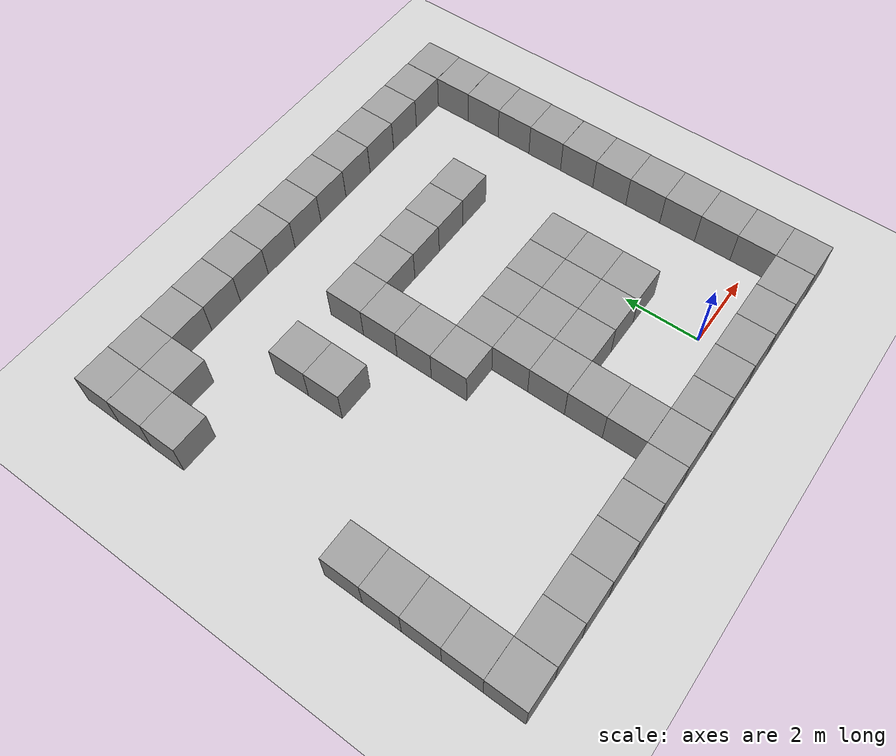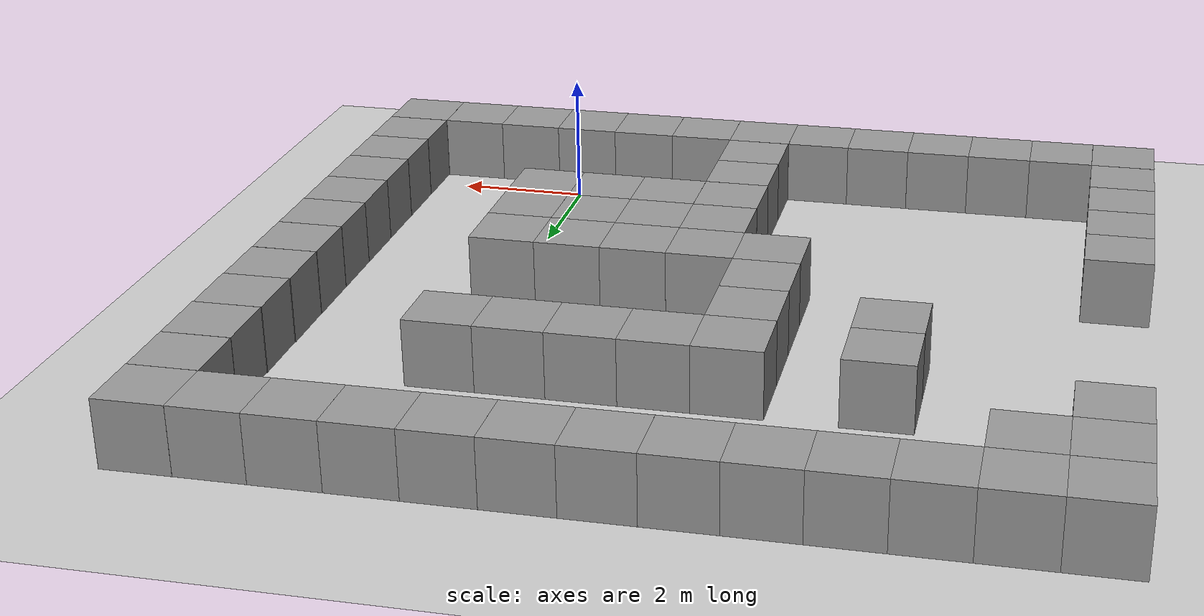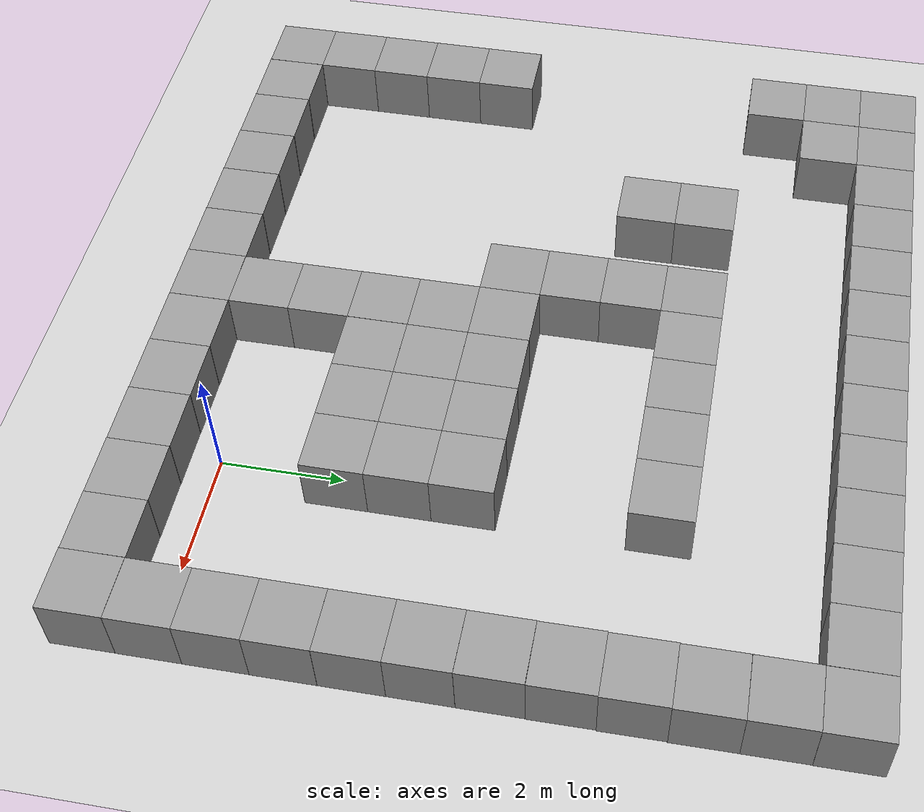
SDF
<sdf version="1.6">
 <world name="default">
  <light name="sun" type="directional">
   <pose>0 0 10 0 -0 0</pose>
   <diffuse>0.8 0.8 0.8 1</diffuse>
   <specular>0.2 0.2 0.2 1</specular>
   <attenuation>
    <range>1000</range>
    <constant>0.9</constant>
    <linear>0.01</linear>
    <quadratic>0.001</quadratic>
   </attenuation>
   <direction>-0.5 0.1 -0.9</direction>
  </light>
  <model name="ground_plane">
   <static>1</static>
   <link name="link">
    <collision name="collision">
     <geometry><plane><normal>0 0 1</normal><size>100 100</size></plane></geometry>
     <surface>
      <contact><collide_bitmask>65535</collide_bitmask></contact>
      <friction><ode><mu>100</mu><mu2>50</mu2></ode></friction>
     </surface>
    </collision>
    <visual name="visual">
     <cast_shadows>0</cast_shadows>
     <geometry><plane><normal>0 0 1</normal><size>100 100</size></plane></geometry>
     <material>
      <script><uri>file://media/materials/scripts/gazebo.material</uri><name>Gazebo/Grey</name></script>
     </material>
    </visual>
   </link>
  </model>
  <gravity>0 0 -9.8</gravity>
  <magnetic_field>6e-06 2.3e-05 -4.2e-05</magnetic_field>
  <atmosphere type="adiabatic"/>
  <physics name="default_physics" default="0" type="ode">
   <max_step_size>0.001</max_step_size>
   <real_time_factor>1</real_time_factor>
   <real_time_update_rate>1000</real_time_update_rate>
  </physics>
  <scene><ambient>0.4 0.4 0.4 1</ambient><background>0.7 0.7 0.7 1</background><shadows>1</shadows></scene>
  <audio><device>default</device></audio>
  <spherical_coordinates>
   <surface_model>EARTH_WGS84</surface_model>
   <latitude_deg>0</latitude_deg>
   <longitude_deg>0</longitude_deg>
   <elevation>0</elevation>
   <heading_deg>0</heading_deg>
  </spherical_coordinates>
  <model name="unit_box">
   <pose>1.0006 -1.00045 0.5 0 -0 0.004021</pose>
   <link name="link">
    <inertial>
     <mass>1</mass>
     <inertia>
      <ixx>0.166667</ixx>
      <ixy>0</ixy>
      <ixz>0</ixz>
      <iyy>0.166667</iyy>
      <iyz>0</iyz>
      <izz>0.166667</izz>
     </inertia>
    </inertial>
    <collision name="collision"><geometry><box><size>1 1 1</size></box></geometry></collision>
    <visual name="visual">
     <geometry><box><size>1 1 1</size></box></geometry>
     <material>
      <script><name>Gazebo/Grey</name><uri>file://media/materials/scripts/gazebo.material</uri></script>
     </material>
    </visual>
   </link>
  </model>
  <model name="unit_box_0">
   <pose>2.00063 -1.00087 0.499995 -0 -1e-05 0.004056</pose>
   <link name="link">
    <inertial>
     <mass>1</mass>
     <inertia>
      <ixx>0.166667</ixx>
      <ixy>0</ixy>
      <ixz>0</ixz>
      <iyy>0.166667</iyy>
      <iyz>0</iyz>
      <izz>0.166667</izz>
     </inertia>
    </inertial>
    <collision name="collision"><geometry><box><size>1 1 1</size></box></geometry></collision>
    <visual name="visual">
     <geometry><box><size>1 1 1</size></box></geometry>
     <material>
      <script><name>Gazebo/Grey</name><uri>file://media/materials/scripts/gazebo.material</uri></script>
     </material>
    </visual>
   </link>
  </model>
  <model name="unit_box_1">
   <pose>3.00114 -1.00315 0.499995 0 1e-05 0.003325</pose>
   <link name="link">
    <inertial>
     <mass>1</mass>
     <inertia>
      <ixx>0.166667</ixx>
      <ixy>0</ixy>
      <ixz>0</ixz>
      <iyy>0.166667</iyy>
      <iyz>0</iyz>
      <izz>0.166667</izz>
     </inertia>
    </inertial>
    <collision name="collision"><geometry><box><size>1 1 1</size></box></geometry></collision>
    <visual name="visual">
     <geometry><box><size>1 1 1</size></box></geometry>
     <material>
      <script><name>Gazebo/Grey</name><uri>file://media/materials/scripts/gazebo.material</uri></script>
     </material>
    </visual>
   </link>
  </model>
  <model name="unit_box_3">
   <pose>-9.00142 -1.00088 0.499995 1e-05 -0 0.002682</pose>
   <link name="link">
    <inertial>
     <mass>1</mass>
     <inertia>
      <ixx>0.166667</ixx>
      <ixy>0</ixy>
      <ixz>0</ixz>
      <iyy>0.166667</iyy>
      <iyz>0</iyz>
      <izz>0.166667</izz>
     </inertia>
    </inertial>
    <collision name="collision"><geometry><box><size>1 1 1</size></box></geometry></collision>
    <visual name="visual">
     <geometry><box><size>1 1 1</size></box></geometry>
     <material>
      <script><name>Gazebo/Grey</name><uri>file://media/materials/scripts/gazebo.material</uri></script>
     </material>
    </visual>
   </link>
  </model>
  <model name="unit_box_2">
   <pose>-8.00042 -0.999688 0.499995 0 1e-05 0.004667</pose>
   <link name="link">
    <inertial>
     <mass>1</mass>
     <inertia>
      <ixx>0.166667</ixx>
      <ixy>0</ixy>
      <ixz>0</ixz>
      <iyy>0.166667</iyy>
      <iyz>0</iyz>
      <izz>0.166667</izz>
     </inertia>
    </inertial>
    <collision name="collision"><geometry><box><size>1 1 1</size></box></geometry></collision>
    <visual name="visual">
     <geometry><box><size>1 1 1</size></box></geometry>
     <material>
      <script><name>Gazebo/Grey</name><uri>file://media/materials/scripts/gazebo.material</uri></script>
     </material>
    </visual>
   </link>
  </model>
  <model name="unit_box_4">
   <pose>-7.00039 -0.999876 0.499995 -0 1e-05 0.004653</pose>
   <link name="link">
    <inertial>
     <mass>1</mass>
     <inertia>
      <ixx>0.166667</ixx>
      <ixy>0</ixy>
      <ixz>0</ixz>
      <iyy>0.166667</iyy>
      <iyz>0</iyz>
      <izz>0.166667</izz>
     </inertia>
    </inertial>
    <collision name="collision"><geometry><box><size>1 1 1</size></box></geometry></collision>
    <visual name="visual">
     <geometry><box><size>1 1 1</size></box></geometry>
     <material>
      <script><name>Gazebo/Grey</name><uri>file://media/materials/scripts/gazebo.material</uri></script>
     </material>
    </visual>
   </link>
  </model>
  <model name="unit_box_5">
   <pose>-6.00038 -1.00053 0.5 0 -0 0.004649</pose>
   <link name="link">
    <inertial>
     <mass>1</mass>
     <inertia>
      <ixx>0.166667</ixx>
      <ixy>0</ixy>
      <ixz>0</ixz>
      <iyy>0.166667</iyy>
      <iyz>0</iyz>
      <izz>0.166667</izz>
     </inertia>
    </inertial>
    <collision name="collision"><geometry><box><size>1 1 1</size></box></geometry></collision>
    <visual name="visual">
     <geometry><box><size>1 1 1</size></box></geometry>
     <material>
      <script><name>Gazebo/Grey</name><uri>file://media/materials/scripts/gazebo.material</uri></script>
     </material>
    </visual>
   </link>
  </model>
  <model name="unit_box_6">
   <pose>-5.00003 -1.0008 0.5 0 -0 0.003989</pose>
   <link name="link">
    <inertial>
     <mass>1</mass>
     <inertia>
      <ixx>0.166667</ixx>
      <ixy>0</ixy>
      <ixz>0</ixz>
      <iyy>0.166667</iyy>
      <iyz>0</iyz>
      <izz>0.166667</izz>
     </inertia>
    </inertial>
    <collision name="collision"><geometry><box><size>1 1 1</size></box></geometry></collision>
    <visual name="visual">
     <geometry><box><size>1 1 1</size></box></geometry>
     <material>
      <script><name>Gazebo/Grey</name><uri>file://media/materials/scripts/gazebo.material</uri></script>
     </material>
    </visual>
   </link>
  </model>
  <model name="unit_box_7">
   <pose>-3.99987 -1.00157 0.499995 -1e-05 -0 0.003714</pose>
   <link name="link">
    <inertial>
     <mass>1</mass>
     <inertia>
      <ixx>0.166667</ixx>
      <ixy>0</ixy>
      <ixz>0</ixz>
      <iyy>0.166667</iyy>
      <iyz>0</iyz>
      <izz>0.166667</izz>
     </inertia>
    </inertial>
    <collision name="collision"><geometry><box><size>1 1 1</size></box></geometry></collision>
    <visual name="visual">
     <geometry><box><size>1 1 1</size></box></geometry>
     <material>
      <script><name>Gazebo/Grey</name><uri>file://media/materials/scripts/gazebo.material</uri></script>
     </material>
    </visual>
   </link>
  </model>
  <model name="unit_box_8">
   <pose>-2.99972 -1.00166 0.499995 1e-05 -0 0.003476</pose>
   <link name="link">
    <inertial>
     <mass>1</mass>
     <inertia>
      <ixx>0.166667</ixx>
      <ixy>0</ixy>
      <ixz>0</ixz>
      <iyy>0.166667</iyy>
      <iyz>0</iyz>
      <izz>0.166667</izz>
     </inertia>
    </inertial>
    <collision name="collision"><geometry><box><size>1 1 1</size></box></geometry></collision>
    <visual name="visual">
     <geometry><box><size>1 1 1</size></box></geometry>
     <material>
      <script><name>Gazebo/Grey</name><uri>file://media/materials/scripts/gazebo.material</uri></script>
     </material>
    </visual>
   </link>
  </model>
  <model name="unit_box_9">
   <pose>-1.99945 -0.999957 0.499995 0 -1e-05 0.004002</pose>
   <link name="link">
    <inertial>
     <mass>1</mass>
     <inertia>
      <ixx>0.166667</ixx>
      <ixy>0</ixy>
      <ixz>0</ixz>
      <iyy>0.166667</iyy>
      <iyz>0</iyz>
      <izz>0.166667</izz>
     </inertia>
    </inertial>
    <collision name="collision"><geometry><box><size>1 1 1</size></box></geometry></collision>
    <visual name="visual">
     <geometry><box><size>1 1 1</size></box></geometry>
     <material>
      <script><name>Gazebo/Grey</name><uri>file://media/materials/scripts/gazebo.material</uri></script>
     </material>
    </visual>
   </link>
  </model>
  <model name="unit_box_10">
   <pose>-0.99943 -1.00001 0.499995 0 -1e-05 0.004022</pose>
   <link name="link">
    <inertial>
     <mass>1</mass>
     <inertia>
      <ixx>0.166667</ixx>
      <ixy>0</ixy>
      <ixz>0</ixz>
      <iyy>0.166667</iyy>
      <iyz>0</iyz>
      <izz>0.166667</izz>
     </inertia>
    </inertial>
    <collision name="collision"><geometry><box><size>1 1 1</size></box></geometry></collision>
    <visual name="visual">
     <geometry><box><size>1 1 1</size></box></geometry>
     <material>
      <script><name>Gazebo/Grey</name><uri>file://media/materials/scripts/gazebo.material</uri></script>
     </material>
    </visual>
   </link>
  </model>
  <model name="unit_box_11">
   <pose>0.000589 -1.0004 0.499995 1e-05 -0 0.004021</pose>
   <link name="link">
    <inertial>
     <mass>1</mass>
     <inertia>
      <ixx>0.166667</ixx>
      <ixy>0</ixy>
      <ixz>0</ixz>
      <iyy>0.166667</iyy>
      <iyz>0</iyz>
      <izz>0.166667</izz>
     </inertia>
    </inertial>
    <collision name="collision"><geometry><box><size>1 1 1</size></box></geometry></collision>
    <visual name="visual">
     <geometry><box><size>1 1 1</size></box></geometry>
     <material>
      <script><name>Gazebo/Grey</name><uri>file://media/materials/scripts/gazebo.material</uri></script>
     </material>
    </visual>
   </link>
  </model>
  <model name="unit_box_12">
   <pose>-9.00074 0.000344 0.499995 1e-05 0 0.000253</pose>
   <link name="link">
    <inertial>
     <mass>1</mass>
     <inertia>
      <ixx>0.166667</ixx>
      <ixy>0</ixy>
      <ixz>0</ixz>
      <iyy>0.166667</iyy>
      <iyz>0</iyz>
      <izz>0.166667</izz>
     </inertia>
    </inertial>
    <collision name="collision"><geometry><box><size>1 1 1</size></box></geometry></collision>
    <visual name="visual">
     <geometry><box><size>1 1 1</size></box></geometry>
     <material>
      <script><name>Gazebo/Grey</name><uri>file://media/materials/scripts/gazebo.material</uri></script>
     </material>
    </visual>
   </link>
  </model>
  <model name="unit_box_15">
   <pose>-3.00118 2.00026 0.499995 -1e-05 -0 -0.000286</pose>
   <link name="link">
    <inertial>
     <mass>1</mass>
     <inertia>
      <ixx>0.166667</ixx>
      <ixy>0</ixy>
      <ixz>0</ixz>
      <iyy>0.166667</iyy>
      <iyz>0</iyz>
      <izz>0.166667</izz>
     </inertia>
    </inertial>
    <collision name="collision"><geometry><box><size>1 1 1</size></box></geometry></collision>
    <visual name="visual">
     <geometry><box><size>1 1 1</size></box></geometry>
     <material>
      <script><name>Gazebo/Grey</name><uri>file://media/materials/scripts/gazebo.material</uri></script>
     </material>
    </visual>
   </link>
  </model>
  <model name="unit_box_24">
   <pose>-9.00042 1.00036 0.499995 -0 -1e-05 0.000247</pose>
   <link name="link">
    <inertial>
     <mass>1</mass>
     <inertia>
      <ixx>0.166667</ixx>
      <ixy>0</ixy>
      <ixz>0</ixz>
      <iyy>0.166667</iyy>
      <iyz>0</iyz>
      <izz>0.166667</izz>
     </inertia>
    </inertial>
    <collision name="collision"><geometry><box><size>1 1 1</size></box></geometry></collision>
    <visual name="visual">
     <geometry><box><size>1 1 1</size></box></geometry>
     <material>
      <script><name>Gazebo/Grey</name><uri>file://media/materials/scripts/gazebo.material</uri></script>
     </material>
    </visual>
   </link>
  </model>
  <model name="unit_box_25">
   <pose>-9.00009 2.00037 0.499995 0 -1e-05 0.000248</pose>
   <link name="link">
    <inertial>
     <mass>1</mass>
     <inertia>
      <ixx>0.166667</ixx>
      <ixy>0</ixy>
      <ixz>0</ixz>
      <iyy>0.166667</iyy>
      <iyz>0</iyz>
      <izz>0.166667</izz>
     </inertia>
    </inertial>
    <collision name="collision"><geometry><box><size>1 1 1</size></box></geometry></collision>
    <visual name="visual">
     <geometry><box><size>1 1 1</size></box></geometry>
     <material>
      <script><name>Gazebo/Grey</name><uri>file://media/materials/scripts/gazebo.material</uri></script>
     </material>
    </visual>
   </link>
  </model>
  <model name="unit_box_26">
   <pose>-8.99994 3.00038 0.499995 -0 -1e-05 0.000235</pose>
   <link name="link">
    <inertial>
     <mass>1</mass>
     <inertia>
      <ixx>0.166667</ixx>
      <ixy>0</ixy>
      <ixz>0</ixz>
      <iyy>0.166667</iyy>
      <iyz>0</iyz>
      <izz>0.166667</izz>
     </inertia>
    </inertial>
    <collision name="collision"><geometry><box><size>1 1 1</size></box></geometry></collision>
    <visual name="visual">
     <geometry><box><size>1 1 1</size></box></geometry>
     <material>
      <script><name>Gazebo/Grey</name><uri>file://media/materials/scripts/gazebo.material</uri></script>
     </material>
    </visual>
   </link>
  </model>
  <model name="unit_box_30">
   <pose>-9.00001 7.99994 0.5 0 -0 0.000557</pose>
   <link name="link">
    <inertial>
     <mass>1</mass>
     <inertia>
      <ixx>0.166667</ixx>
      <ixy>0</ixy>
      <ixz>0</ixz>
      <iyy>0.166667</iyy>
      <iyz>0</iyz>
      <izz>0.166667</izz>
     </inertia>
    </inertial>
    <collision name="collision"><geometry><box><size>1 1 1</size></box></geometry></collision>
    <visual name="visual">
     <geometry><box><size>1 1 1</size></box></geometry>
     <material>
      <script><name>Gazebo/Grey</name><uri>file://media/materials/scripts/gazebo.material</uri></script>
     </material>
    </visual>
   </link>
  </model>
  <model name="unit_box_31">
   <pose>-9.00014 8.99998 0.499995 0 -1e-05 0.000487</pose>
   <link name="link">
    <inertial>
     <mass>1</mass>
     <inertia>
      <ixx>0.166667</ixx>
      <ixy>0</ixy>
      <ixz>0</ixz>
      <iyy>0.166667</iyy>
      <iyz>0</iyz>
      <izz>0.166667</izz>
     </inertia>
    </inertial>
    <collision name="collision"><geometry><box><size>1 1 1</size></box></geometry></collision>
    <visual name="visual">
     <geometry><box><size>1 1 1</size></box></geometry>
     <material>
      <script><name>Gazebo/Grey</name><uri>file://media/materials/scripts/gazebo.material</uri></script>
     </material>
    </visual>
   </link>
  </model>
  <model name="unit_box_39">
   <pose>3.00076 -0.002101 0.499995 -1e-05 0 0.001342</pose>
   <link name="link">
    <inertial>
     <mass>1</mass>
     <inertia>
      <ixx>0.166667</ixx>
      <ixy>0</ixy>
      <ixz>0</ixz>
      <iyy>0.166667</iyy>
      <iyz>0</iyz>
      <izz>0.166667</izz>
     </inertia>
    </inertial>
    <collision name="collision"><geometry><box><size>1 1 1</size></box></geometry></collision>
    <visual name="visual">
     <geometry><box><size>1 1 1</size></box></geometry>
     <material>
      <script><name>Gazebo/Grey</name><uri>file://media/materials/scripts/gazebo.material</uri></script>
     </material>
    </visual>
   </link>
  </model>
  <model name="unit_box_40">
   <pose>3.00096 0.997906 0.499995 -1e-05 -0 0.001348</pose>
   <link name="link">
    <inertial>
     <mass>1</mass>
     <inertia>
      <ixx>0.166667</ixx>
      <ixy>0</ixy>
      <ixz>0</ixz>
      <iyy>0.166667</iyy>
      <iyz>0</iyz>
      <izz>0.166667</izz>
     </inertia>
    </inertial>
    <collision name="collision"><geometry><box><size>1 1 1</size></box></geometry></collision>
    <visual name="visual">
     <geometry><box><size>1 1 1</size></box></geometry>
     <material>
      <script><name>Gazebo/Grey</name><uri>file://media/materials/scripts/gazebo.material</uri></script>
     </material>
    </visual>
   </link>
  </model>
  <model name="unit_box_41">
   <pose>3.00123 1.99792 0.5 0 -0 0.001387</pose>
   <link name="link">
    <inertial>
     <mass>1</mass>
     <inertia>
      <ixx>0.166667</ixx>
      <ixy>0</ixy>
      <ixz>0</ixz>
      <iyy>0.166667</iyy>
      <iyz>0</iyz>
      <izz>0.166667</izz>
     </inertia>
    </inertial>
    <collision name="collision"><geometry><box><size>1 1 1</size></box></geometry></collision>
    <visual name="visual">
     <geometry><box><size>1 1 1</size></box></geometry>
     <material>
      <script><name>Gazebo/Grey</name><uri>file://media/materials/scripts/gazebo.material</uri></script>
     </material>
    </visual>
   </link>
  </model>
  <model name="unit_box_47">
   <pose>2.99921 2.99799 0.5 0 -0 0.00152</pose>
   <link name="link">
    <inertial>
     <mass>1</mass>
     <inertia>
      <ixx>0.166667</ixx>
      <ixy>0</ixy>
      <ixz>0</ixz>
      <iyy>0.166667</iyy>
      <iyz>0</iyz>
      <izz>0.166667</izz>
     </inertia>
    </inertial>
    <collision name="collision"><geometry><box><size>1 1 1</size></box></geometry></collision>
    <visual name="visual">
     <geometry><box><size>1 1 1</size></box></geometry>
     <material>
      <script><name>Gazebo/Grey</name><uri>file://media/materials/scripts/gazebo.material</uri></script>
     </material>
    </visual>
   </link>
  </model>
  <model name="unit_box_48">
   <pose>2.99795 3.99807 0.499995 0 1e-05 0.001666</pose>
   <link name="link">
    <inertial>
     <mass>1</mass>
     <inertia>
      <ixx>0.166667</ixx>
      <ixy>0</ixy>
      <ixz>0</ixz>
      <iyy>0.166667</iyy>
      <iyz>0</iyz>
      <izz>0.166667</izz>
     </inertia>
    </inertial>
    <collision name="collision"><geometry><box><size>1 1 1</size></box></geometry></collision>
    <visual name="visual">
     <geometry><box><size>1 1 1</size></box></geometry>
     <material>
      <script><name>Gazebo/Grey</name><uri>file://media/materials/scripts/gazebo.material</uri></script>
     </material>
    </visual>
   </link>
  </model>
  <model name="unit_box_49">
   <pose>2.99728 4.99873 0.499995 0 1e-05 0.002966</pose>
   <link name="link">
    <inertial>
     <mass>1</mass>
     <inertia>
      <ixx>0.166667</ixx>
      <ixy>0</ixy>
      <ixz>0</ixz>
      <iyy>0.166667</iyy>
      <iyz>0</iyz>
      <izz>0.166667</izz>
     </inertia>
    </inertial>
    <collision name="collision"><geometry><box><size>1 1 1</size></box></geometry></collision>
    <visual name="visual">
     <geometry><box><size>1 1 1</size></box></geometry>
     <material>
      <script><name>Gazebo/Grey</name><uri>file://media/materials/scripts/gazebo.material</uri></script>
     </material>
    </visual>
   </link>
  </model>
  <model name="unit_box_50">
   <pose>2.99765 6.00088 0.499995 0 -1e-05 0.007278</pose>
   <link name="link">
    <inertial>
     <mass>1</mass>
     <inertia>
      <ixx>0.166667</ixx>
      <ixy>0</ixy>
      <ixz>0</ixz>
      <iyy>0.166667</iyy>
      <iyz>0</iyz>
      <izz>0.166667</izz>
     </inertia>
    </inertial>
    <collision name="collision"><geometry><box><size>1 1 1</size></box></geometry></collision>
    <visual name="visual">
     <geometry><box><size>1 1 1</size></box></geometry>
     <material>
      <script><name>Gazebo/Grey</name><uri>file://media/materials/scripts/gazebo.material</uri></script>
     </material>
    </visual>
   </link>
  </model>
  <model name="unit_box_51">
   <pose>3.00198 7.00097 0.5 0 -0 0.007233</pose>
   <link name="link">
    <inertial>
     <mass>1</mass>
     <inertia>
      <ixx>0.166667</ixx>
      <ixy>0</ixy>
      <ixz>0</ixz>
      <iyy>0.166667</iyy>
      <iyz>0</iyz>
      <izz>0.166667</izz>
     </inertia>
    </inertial>
    <collision name="collision"><geometry><box><size>1 1 1</size></box></geometry></collision>
    <visual name="visual">
     <geometry><box><size>1 1 1</size></box></geometry>
     <material>
      <script><name>Gazebo/Grey</name><uri>file://media/materials/scripts/gazebo.material</uri></script>
     </material>
    </visual>
   </link>
  </model>
  <model name="unit_box_52">
   <pose>3.00479 8.00125 0.499995 -0 1e-05 0.006745</pose>
   <link name="link">
    <inertial>
     <mass>1</mass>
     <inertia>
      <ixx>0.166667</ixx>
      <ixy>0</ixy>
      <ixz>0</ixz>
      <iyy>0.166667</iyy>
      <iyz>0</iyz>
      <izz>0.166667</izz>
     </inertia>
    </inertial>
    <collision name="collision"><geometry><box><size>1 1 1</size></box></geometry></collision>
    <visual name="visual">
     <geometry><box><size>1 1 1</size></box></geometry>
     <material>
      <script><name>Gazebo/Grey</name><uri>file://media/materials/scripts/gazebo.material</uri></script>
     </material>
    </visual>
   </link>
  </model>
  <model name="unit_box_13">
   <pose>-2.99997 1.00007 0.499995 -1e-05 -0 7.2e-05</pose>
   <link name="link">
    <inertial>
     <mass>1</mass>
     <inertia>
      <ixx>0.166667</ixx>
      <ixy>0</ixy>
      <ixz>0</ixz>
      <iyy>0.166667</iyy>
      <iyz>0</iyz>
      <izz>0.166667</izz>
     </inertia>
    </inertial>
    <collision name="collision"><geometry><box><size>1 1 1</size></box></geometry></collision>
    <visual name="visual">
     <geometry><box><size>1 1 1</size></box></geometry>
     <material>
      <script><name>Gazebo/Grey</name><uri>file://media/materials/scripts/gazebo.material</uri></script>
     </material>
    </visual>
   </link>
  </model>
  <model name="unit_box_14">
   <pose>-2.99992 4.6e-05 0.499995 1e-05 -0 7e-05</pose>
   <link name="link">
    <inertial>
     <mass>1</mass>
     <inertia>
      <ixx>0.166667</ixx>
      <ixy>0</ixy>
      <ixz>0</ixz>
      <iyy>0.166667</iyy>
      <iyz>0</iyz>
      <izz>0.166667</izz>
     </inertia>
    </inertial>
    <collision name="collision"><geometry><box><size>1 1 1</size></box></geometry></collision>
    <visual name="visual">
     <geometry><box><size>1 1 1</size></box></geometry>
     <material>
      <script><name>Gazebo/Grey</name><uri>file://media/materials/scripts/gazebo.material</uri></script>
     </material>
    </visual>
   </link>
  </model>
  <model name="unit_box_27">
   <pose>-1.99999 1.99996 0.499995 0 1e-05 1.5e-05</pose>
   <link name="link">
    <inertial>
     <mass>1</mass>
     <inertia>
      <ixx>0.166667</ixx>
      <ixy>0</ixy>
      <ixz>0</ixz>
      <iyy>0.166667</iyy>
      <iyz>0</iyz>
      <izz>0.166667</izz>
     </inertia>
    </inertial>
    <collision name="collision"><geometry><box><size>1 1 1</size></box></geometry></collision>
    <visual name="visual">
     <geometry><box><size>1 1 1</size></box></geometry>
     <material>
      <script><name>Gazebo/Grey</name><uri>file://media/materials/scripts/gazebo.material</uri></script>
     </material>
    </visual>
   </link>
  </model>
  <model name="unit_box_42">
   <pose>-0.999997 1.99997 0.499995 0 -1e-05 1.4e-05</pose>
   <link name="link">
    <inertial>
     <mass>1</mass>
     <inertia>
      <ixx>0.166667</ixx>
      <ixy>0</ixy>
      <ixz>0</ixz>
      <iyy>0.166667</iyy>
      <iyz>0</iyz>
      <izz>0.166667</izz>
     </inertia>
    </inertial>
    <collision name="collision"><geometry><box><size>1 1 1</size></box></geometry></collision>
    <visual name="visual">
     <geometry><box><size>1 1 1</size></box></geometry>
     <material>
      <script><name>Gazebo/Grey</name><uri>file://media/materials/scripts/gazebo.material</uri></script>
     </material>
    </visual>
   </link>
  </model>
  <model name="unit_box_43">
   <pose>2.4e-05 1.99998 0.499995 0 1e-05 -2e-06</pose>
   <link name="link">
    <inertial>
     <mass>1</mass>
     <inertia>
      <ixx>0.166667</ixx>
      <ixy>0</ixy>
      <ixz>0</ixz>
      <iyy>0.166667</iyy>
      <iyz>0</iyz>
      <izz>0.166667</izz>
     </inertia>
    </inertial>
    <collision name="collision"><geometry><box><size>1 1 1</size></box></geometry></collision>
    <visual name="visual">
     <geometry><box><size>1 1 1</size></box></geometry>
     <material>
      <script><name>Gazebo/Grey</name><uri>file://media/materials/scripts/gazebo.material</uri></script>
     </material>
    </visual>
   </link>
  </model>
  <model name="unit_box_44">
   <pose>3.9e-05 3 0.499995 -0 1e-05 -3e-05</pose>
   <link name="link">
    <inertial>
     <mass>1</mass>
     <inertia>
      <ixx>0.166667</ixx>
      <ixy>0</ixy>
      <ixz>0</ixz>
      <iyy>0.166667</iyy>
      <iyz>0</iyz>
      <izz>0.166667</izz>
     </inertia>
    </inertial>
    <collision name="collision"><geometry><box><size>1 1 1</size></box></geometry></collision>
    <visual name="visual">
     <geometry><box><size>1 1 1</size></box></geometry>
     <material>
      <script><name>Gazebo/Grey</name><uri>file://media/materials/scripts/gazebo.material</uri></script>
     </material>
    </visual>
   </link>
  </model>
  <model name="unit_box_45">
   <pose>4.2e-05 4.00003 0.499995 1e-05 -0 -7.8e-05</pose>
   <link name="link">
    <inertial>
     <mass>1</mass>
     <inertia>
      <ixx>0.166667</ixx>
      <ixy>0</ixy>
      <ixz>0</ixz>
      <iyy>0.166667</iyy>
      <iyz>0</iyz>
      <izz>0.166667</izz>
     </inertia>
    </inertial>
    <collision name="collision"><geometry><box><size>1 1 1</size></box></geometry></collision>
    <visual name="visual">
     <geometry><box><size>1 1 1</size></box></geometry>
     <material>
      <script><name>Gazebo/Grey</name><uri>file://media/materials/scripts/gazebo.material</uri></script>
     </material>
    </visual>
   </link>
  </model>
  <model name="unit_box_16">
   <pose>-3.00015 3.00026 0.499995 1e-05 -0 -0.000284</pose>
   <link name="link">
    <inertial>
     <mass>1</mass>
     <inertia>
      <ixx>0.166667</ixx>
      <ixy>0</ixy>
      <ixz>0</ixz>
      <iyy>0.166667</iyy>
      <iyz>0</iyz>
      <izz>0.166667</izz>
     </inertia>
    </inertial>
    <collision name="collision"><geometry><box><size>1 1 1</size></box></geometry></collision>
    <visual name="visual">
     <geometry><box><size>1 1 1</size></box></geometry>
     <material>
      <script><name>Gazebo/Grey</name><uri>file://media/materials/scripts/gazebo.material</uri></script>
     </material>
    </visual>
   </link>
  </model>
  <model name="unit_box_17">
   <pose>-3.00005 4.00031 0.499995 1e-05 0 -0.000185</pose>
   <link name="link">
    <inertial>
     <mass>1</mass>
     <inertia>
      <ixx>0.166667</ixx>
      <ixy>0</ixy>
      <ixz>0</ixz>
      <iyy>0.166667</iyy>
      <iyz>0</iyz>
      <izz>0.166667</izz>
     </inertia>
    </inertial>
    <collision name="collision"><geometry><box><size>1 1 1</size></box></geometry></collision>
    <visual name="visual">
     <geometry><box><size>1 1 1</size></box></geometry>
     <material>
      <script><name>Gazebo/Grey</name><uri>file://media/materials/scripts/gazebo.material</uri></script>
     </material>
    </visual>
   </link>
  </model>
  <model name="unit_box_18">
   <pose>-1.99999 4.00008 0.499995 0 -1e-05 -0.000125</pose>
   <link name="link">
    <inertial>
     <mass>1</mass>
     <inertia>
      <ixx>0.166667</ixx>
      <ixy>0</ixy>
      <ixz>0</ixz>
      <iyy>0.166667</iyy>
      <iyz>0</iyz>
      <izz>0.166667</izz>
     </inertia>
    </inertial>
    <collision name="collision"><geometry><box><size>1 1 1</size></box></geometry></collision>
    <visual name="visual">
     <geometry><box><size>1 1 1</size></box></geometry>
     <material>
      <script><name>Gazebo/Grey</name><uri>file://media/materials/scripts/gazebo.material</uri></script>
     </material>
    </visual>
   </link>
  </model>
  <model name="unit_box_19">
   <pose>-0.99996 4.00003 0.499995 1e-05 0 -8e-05</pose>
   <link name="link">
    <inertial>
     <mass>1</mass>
     <inertia>
      <ixx>0.166667</ixx>
      <ixy>0</ixy>
      <ixz>0</ixz>
      <iyy>0.166667</iyy>
      <iyz>0</iyz>
      <izz>0.166667</izz>
     </inertia>
    </inertial>
    <collision name="collision"><geometry><box><size>1 1 1</size></box></geometry></collision>
    <visual name="visual">
     <geometry><box><size>1 1 1</size></box></geometry>
     <material>
      <script><name>Gazebo/Grey</name><uri>file://media/materials/scripts/gazebo.material</uri></script>
     </material>
    </visual>
   </link>
  </model>
  <model name="unit_box_20">
   <pose>-0.999973 3.00001 0.5 0 -0 -3.3e-05</pose>
   <link name="link">
    <inertial>
     <mass>1</mass>
     <inertia>
      <ixx>0.166667</ixx>
      <ixy>0</ixy>
      <ixz>0</ixz>
      <iyy>0.166667</iyy>
      <iyz>0</iyz>
      <izz>0.166667</izz>
     </inertia>
    </inertial>
    <collision name="collision"><geometry><box><size>1 1 1</size></box></geometry></collision>
    <visual name="visual">
     <geometry><box><size>1 1 1</size></box></geometry>
     <material>
      <script><name>Gazebo/Grey</name><uri>file://media/materials/scripts/gazebo.material</uri></script>
     </material>
    </visual>
   </link>
  </model>
  <model name="unit_box_21">
   <pose>-1.99998 3.00002 0.5 0 0 -3.6e-05</pose>
   <link name="link">
    <inertial>
     <mass>1</mass>
     <inertia>
      <ixx>0.166667</ixx>
      <ixy>0</ixy>
      <ixz>0</ixz>
      <iyy>0.166667</iyy>
      <iyz>0</iyz>
      <izz>0.166667</izz>
     </inertia>
    </inertial>
    <collision name="collision"><geometry><box><size>1 1 1</size></box></geometry></collision>
    <visual name="visual">
     <geometry><box><size>1 1 1</size></box></geometry>
     <material>
      <script><name>Gazebo/Grey</name><uri>file://media/materials/scripts/gazebo.material</uri></script>
     </material>
    </visual>
   </link>
  </model>
  <model name="unit_box_22">
   <pose>-4.00009 3.99999 0.499995 -0 1e-05 -0.000102</pose>
   <link name="link">
    <inertial>
     <mass>1</mass>
     <inertia>
      <ixx>0.166667</ixx>
      <ixy>0</ixy>
      <ixz>0</ixz>
      <iyy>0.166667</iyy>
      <iyz>0</iyz>
      <izz>0.166667</izz>
     </inertia>
    </inertial>
    <collision name="collision"><geometry><box><size>1 1 1</size></box></geometry></collision>
    <visual name="visual">
     <geometry><box><size>1 1 1</size></box></geometry>
     <material>
      <script><name>Gazebo/Grey</name><uri>file://media/materials/scripts/gazebo.material</uri></script>
     </material>
    </visual>
   </link>
  </model>
  <model name="unit_box_36">
   <pose>-4.00003 5.00003 0.5 0 0 -5.3e-05</pose>
   <link name="link">
    <inertial>
     <mass>1</mass>
     <inertia>
      <ixx>0.166667</ixx>
      <ixy>0</ixy>
      <ixz>0</ixz>
      <iyy>0.166667</iyy>
      <iyz>0</iyz>
      <izz>0.166667</izz>
     </inertia>
    </inertial>
    <collision name="collision"><geometry><box><size>1 1 1</size></box></geometry></collision>
    <visual name="visual">
     <geometry><box><size>1 1 1</size></box></geometry>
     <material>
      <script><name>Gazebo/Grey</name><uri>file://media/materials/scripts/gazebo.material</uri></script>
     </material>
    </visual>
   </link>
  </model>
  <model name="unit_box_46">
   <pose>-4.00002 6.00003 0.5 0 0 -5.2e-05</pose>
   <link name="link">
    <inertial>
     <mass>1</mass>
     <inertia>
      <ixx>0.166667</ixx>
      <ixy>0</ixy>
      <ixz>0</ixz>
      <iyy>0.166667</iyy>
      <iyz>0</iyz>
      <izz>0.166667</izz>
     </inertia>
    </inertial>
    <collision name="collision"><geometry><box><size>1 1 1</size></box></geometry></collision>
    <visual name="visual">
     <geometry><box><size>1 1 1</size></box></geometry>
     <material>
      <script><name>Gazebo/Grey</name><uri>file://media/materials/scripts/gazebo.material</uri></script>
     </material>
    </visual>
   </link>
  </model>
  <model name="unit_box_58">
   <pose>-4.00002 7.00004 0.499995 -0 1e-05 -3e-05</pose>
   <link name="link">
    <inertial>
     <mass>1</mass>
     <inertia>
      <ixx>0.166667</ixx>
      <ixy>0</ixy>
      <ixz>0</ixz>
      <iyy>0.166667</iyy>
      <iyz>0</iyz>
      <izz>0.166667</izz>
     </inertia>
    </inertial>
    <collision name="collision"><geometry><box><size>1 1 1</size></box></geometry></collision>
    <visual name="visual">
     <geometry><box><size>1 1 1</size></box></geometry>
     <material>
      <script><name>Gazebo/Grey</name><uri>file://media/materials/scripts/gazebo.material</uri></script>
     </material>
    </visual>
   </link>
  </model>
  <model name="unit_box_59">
   <pose>-3 7.00001 0.499995 0 -1e-05 1e-06</pose>
   <link name="link">
    <inertial>
     <mass>1</mass>
     <inertia>
      <ixx>0.166667</ixx>
      <ixy>0</ixy>
      <ixz>0</ixz>
      <iyy>0.166667</iyy>
      <iyz>0</iyz>
      <izz>0.166667</izz>
     </inertia>
    </inertial>
    <collision name="collision"><geometry><box><size>1 1 1</size></box></geometry></collision>
    <visual name="visual">
     <geometry><box><size>1 1 1</size></box></geometry>
     <material>
      <script><name>Gazebo/Grey</name><uri>file://media/materials/scripts/gazebo.material</uri></script>
     </material>
    </visual>
   </link>
  </model>
  <model name="unit_box_60">
   <pose>-1.99999 7.00001 0.499995 0 1e-05 -1e-06</pose>
   <link name="link">
    <inertial>
     <mass>1</mass>
     <inertia>
      <ixx>0.166667</ixx>
      <ixy>0</ixy>
      <ixz>0</ixz>
      <iyy>0.166667</iyy>
      <iyz>0</iyz>
      <izz>0.166667</izz>
     </inertia>
    </inertial>
    <collision name="collision"><geometry><box><size>1 1 1</size></box></geometry></collision>
    <visual name="visual">
     <geometry><box><size>1 1 1</size></box></geometry>
     <material>
      <script><name>Gazebo/Grey</name><uri>file://media/materials/scripts/gazebo.material</uri></script>
     </material>
    </visual>
   </link>
  </model>
  <model name="unit_box_61">
   <pose>-0.999984 7.00002 0.499995 -0 1e-05 4e-06</pose>
   <link name="link">
    <inertial>
     <mass>1</mass>
     <inertia>
      <ixx>0.166667</ixx>
      <ixy>0</ixy>
      <ixz>0</ixz>
      <iyy>0.166667</iyy>
      <iyz>0</iyz>
      <izz>0.166667</izz>
     </inertia>
    </inertial>
    <collision name="collision"><geometry><box><size>1 1 1</size></box></geometry></collision>
    <visual name="visual">
     <geometry><box><size>1 1 1</size></box></geometry>
     <material>
      <script><name>Gazebo/Grey</name><uri>file://media/materials/scripts/gazebo.material</uri></script>
     </material>
    </visual>
   </link>
  </model>
  <model name="unit_box_62">
   <pose>1.1e-05 6.99999 0.499995 0 -1e-05 6e-06</pose>
   <link name="link">
    <inertial>
     <mass>1</mass>
     <inertia>
      <ixx>0.166667</ixx>
      <ixy>0</ixy>
      <ixz>0</ixz>
      <iyy>0.166667</iyy>
      <iyz>0</iyz>
      <izz>0.166667</izz>
     </inertia>
    </inertial>
    <collision name="collision"><geometry><box><size>1 1 1</size></box></geometry></collision>
    <visual name="visual">
     <geometry><box><size>1 1 1</size></box></geometry>
     <material>
      <script><name>Gazebo/Grey</name><uri>file://media/materials/scripts/gazebo.material</uri></script>
     </material>
    </visual>
   </link>
  </model>
  <model name="unit_box_63">
   <pose>-6.00001 6 0.499995 0 -1e-05 1e-06</pose>
   <link name="link">
    <inertial>
     <mass>1</mass>
     <inertia>
      <ixx>0.166667</ixx>
      <ixy>0</ixy>
      <ixz>0</ixz>
      <iyy>0.166667</iyy>
      <iyz>0</iyz>
      <izz>0.166667</izz>
     </inertia>
    </inertial>
    <collision name="collision"><geometry><box><size>1 1 1</size></box></geometry></collision>
    <visual name="visual">
     <geometry><box><size>1 1 1</size></box></geometry>
     <material>
      <script><name>Gazebo/Grey</name><uri>file://media/materials/scripts/gazebo.material</uri></script>
     </material>
    </visual>
   </link>
  </model>
  <model name="unit_box_23">
   <pose>-5.99999 7 0.499995 -0 1e-05 1e-06</pose>
   <link name="link">
    <inertial>
     <mass>1</mass>
     <inertia>
      <ixx>0.166667</ixx>
      <ixy>0</ixy>
      <ixz>0</ixz>
      <iyy>0.166667</iyy>
      <iyz>0</iyz>
      <izz>0.166667</izz>
     </inertia>
    </inertial>
    <collision name="collision"><geometry><box><size>1 1 1</size></box></geometry></collision>
    <visual name="visual">
     <geometry><box><size>1 1 1</size></box></geometry>
     <material>
      <script><name>Gazebo/Grey</name><uri>file://media/materials/scripts/gazebo.material</uri></script>
     </material>
    </visual>
   </link>
  </model>
  <model name="unit_box_28">
   <pose>3.00059 9.00222 0.499995 0 -1e-05 0.004791</pose>
   <link name="link">
    <inertial>
     <mass>1</mass>
     <inertia>
      <ixx>0.166667</ixx>
      <ixy>0</ixy>
      <ixz>0</ixz>
      <iyy>0.166667</iyy>
      <iyz>0</iyz>
      <izz>0.166667</izz>
     </inertia>
    </inertial>
    <collision name="collision"><geometry><box><size>1 1 1</size></box></geometry></collision>
    <visual name="visual">
     <geometry><box><size>1 1 1</size></box></geometry>
     <material>
      <script><name>Gazebo/Grey</name><uri>file://media/materials/scripts/gazebo.material</uri></script>
     </material>
    </visual>
   </link>
  </model>
  <model name="unit_box_29">
   <pose>3.00149 10.0029 0.499995 1e-05 -0 0.003525</pose>
   <link name="link">
    <inertial>
     <mass>1</mass>
     <inertia>
      <ixx>0.166667</ixx>
      <ixy>0</ixy>
      <ixz>0</ixz>
      <iyy>0.166667</iyy>
      <iyz>0</iyz>
      <izz>0.166667</izz>
     </inertia>
    </inertial>
    <collision name="collision"><geometry><box><size>1 1 1</size></box></geometry></collision>
    <visual name="visual">
     <geometry><box><size>1 1 1</size></box></geometry>
     <material>
      <script><name>Gazebo/Grey</name><uri>file://media/materials/scripts/gazebo.material</uri></script>
     </material>
    </visual>
   </link>
  </model>
  <model name="unit_box_37">
   <pose>2.00004 10.0002 0.5 0 -0 0.000622</pose>
   <link name="link">
    <inertial>
     <mass>1</mass>
     <inertia>
      <ixx>0.166667</ixx>
      <ixy>0</ixy>
      <ixz>0</ixz>
      <iyy>0.166667</iyy>
      <iyz>0</iyz>
      <izz>0.166667</izz>
     </inertia>
    </inertial>
    <collision name="collision"><geometry><box><size>1 1 1</size></box></geometry></collision>
    <visual name="visual">
     <geometry><box><size>1 1 1</size></box></geometry>
     <material>
      <script><name>Gazebo/Grey</name><uri>file://media/materials/scripts/gazebo.material</uri></script>
     </material>
    </visual>
   </link>
  </model>
  <model name="unit_box_38">
   <pose>0.999992 10.0001 0.5 0 -0 0.000535</pose>
   <link name="link">
    <inertial>
     <mass>1</mass>
     <inertia>
      <ixx>0.166667</ixx>
      <ixy>0</ixy>
      <ixz>0</ixz>
      <iyy>0.166667</iyy>
      <iyz>0</iyz>
      <izz>0.166667</izz>
     </inertia>
    </inertial>
    <collision name="collision"><geometry><box><size>1 1 1</size></box></geometry></collision>
    <visual name="visual">
     <geometry><box><size>1 1 1</size></box></geometry>
     <material>
      <script><name>Gazebo/Grey</name><uri>file://media/materials/scripts/gazebo.material</uri></script>
     </material>
    </visual>
   </link>
  </model>
  <model name="unit_box_53">
   <pose>-3.3e-05 10.0003 0.499995 -1e-05 -0 0.00049</pose>
   <link name="link">
    <inertial>
     <mass>1</mass>
     <inertia>
      <ixx>0.166667</ixx>
      <ixy>0</ixy>
      <ixz>0</ixz>
      <iyy>0.166667</iyy>
      <iyz>0</iyz>
      <izz>0.166667</izz>
     </inertia>
    </inertial>
    <collision name="collision"><geometry><box><size>1 1 1</size></box></geometry></collision>
    <visual name="visual">
     <geometry><box><size>1 1 1</size></box></geometry>
     <material>
      <script><name>Gazebo/Grey</name><uri>file://media/materials/scripts/gazebo.material</uri></script>
     </material>
    </visual>
   </link>
  </model>
  <model name="unit_box_54">
   <pose>-1.00009 10.0003 0.499995 0 1e-05 0.00038</pose>
   <link name="link">
    <inertial>
     <mass>1</mass>
     <inertia>
      <ixx>0.166667</ixx>
      <ixy>0</ixy>
      <ixz>0</ixz>
      <iyy>0.166667</iyy>
      <iyz>0</iyz>
      <izz>0.166667</izz>
     </inertia>
    </inertial>
    <collision name="collision"><geometry><box><size>1 1 1</size></box></geometry></collision>
    <visual name="visual">
     <geometry><box><size>1 1 1</size></box></geometry>
     <material>
      <script><name>Gazebo/Grey</name><uri>file://media/materials/scripts/gazebo.material</uri></script>
     </material>
    </visual>
   </link>
  </model>
  <model name="unit_box_55">
   <pose>-2.00016 10.0002 0.5 0 -0 0.00025</pose>
   <link name="link">
    <inertial>
     <mass>1</mass>
     <inertia>
      <ixx>0.166667</ixx>
      <ixy>0</ixy>
      <ixz>0</ixz>
      <iyy>0.166667</iyy>
      <iyz>0</iyz>
      <izz>0.166667</izz>
     </inertia>
    </inertial>
    <collision name="collision"><geometry><box><size>1 1 1</size></box></geometry></collision>
    <visual name="visual">
     <geometry><box><size>1 1 1</size></box></geometry>
     <material>
      <script><name>Gazebo/Grey</name><uri>file://media/materials/scripts/gazebo.material</uri></script>
     </material>
    </visual>
   </link>
  </model>
  <model name="unit_box_56">
   <pose>-3.00017 10 0.499995 1e-05 -0 0.000237</pose>
   <link name="link">
    <inertial>
     <mass>1</mass>
     <inertia>
      <ixx>0.166667</ixx>
      <ixy>0</ixy>
      <ixz>0</ixz>
      <iyy>0.166667</iyy>
      <iyz>0</iyz>
      <izz>0.166667</izz>
     </inertia>
    </inertial>
    <collision name="collision"><geometry><box><size>1 1 1</size></box></geometry></collision>
    <visual name="visual">
     <geometry><box><size>1 1 1</size></box></geometry>
     <material>
      <script><name>Gazebo/Grey</name><uri>file://media/materials/scripts/gazebo.material</uri></script>
     </material>
    </visual>
   </link>
  </model>
  <model name="unit_box_32">
   <pose>-9.0002 10.0002 0.499995 -1e-05 -0 0.000199</pose>
   <link name="link">
    <inertial>
     <mass>1</mass>
     <inertia>
      <ixx>0.166667</ixx>
      <ixy>0</ixy>
      <ixz>0</ixz>
      <iyy>0.166667</iyy>
      <iyz>0</iyz>
      <izz>0.166667</izz>
     </inertia>
    </inertial>
    <collision name="collision"><geometry><box><size>1 1 1</size></box></geometry></collision>
    <visual name="visual">
     <geometry><box><size>1 1 1</size></box></geometry>
     <material>
      <script><name>Gazebo/Grey</name><uri>file://media/materials/scripts/gazebo.material</uri></script>
     </material>
    </visual>
   </link>
  </model>
  <model name="unit_box_33">
   <pose>-8.00019 10 0.499995 1e-05 -0 0.000205</pose>
   <link name="link">
    <inertial>
     <mass>1</mass>
     <inertia>
      <ixx>0.166667</ixx>
      <ixy>0</ixy>
      <ixz>0</ixz>
      <iyy>0.166667</iyy>
      <iyz>0</iyz>
      <izz>0.166667</izz>
     </inertia>
    </inertial>
    <collision name="collision"><geometry><box><size>1 1 1</size></box></geometry></collision>
    <visual name="visual">
     <geometry><box><size>1 1 1</size></box></geometry>
     <material>
      <script><name>Gazebo/Grey</name><uri>file://media/materials/scripts/gazebo.material</uri></script>
     </material>
    </visual>
   </link>
  </model>
  <model name="unit_box_34">
   <pose>-7.00019 10.0001 0.5 0 -0 0.000206</pose>
   <link name="link">
    <inertial>
     <mass>1</mass>
     <inertia>
      <ixx>0.166667</ixx>
      <ixy>0</ixy>
      <ixz>0</ixz>
      <iyy>0.166667</iyy>
      <iyz>0</iyz>
      <izz>0.166667</izz>
     </inertia>
    </inertial>
    <collision name="collision"><geometry><box><size>1 1 1</size></box></geometry></collision>
    <visual name="visual">
     <geometry><box><size>1 1 1</size></box></geometry>
     <material>
      <script><name>Gazebo/Grey</name><uri>file://media/materials/scripts/gazebo.material</uri></script>
     </material>
    </visual>
   </link>
  </model>
  <model name="unit_box_35">
   <pose>-6.00019 10.0001 0.5 -0 1e-06 0.000212</pose>
   <link name="link">
    <inertial>
     <mass>1</mass>
     <inertia>
      <ixx>0.166667</ixx>
      <ixy>0</ixy>
      <ixz>0</ixz>
      <iyy>0.166667</iyy>
      <iyz>0</iyz>
      <izz>0.166667</izz>
     </inertia>
    </inertial>
    <collision name="collision"><geometry><box><size>1 1 1</size></box></geometry></collision>
    <visual name="visual">
     <geometry><box><size>1 1 1</size></box></geometry>
     <material>
      <script><name>Gazebo/Grey</name><uri>file://media/materials/scripts/gazebo.material</uri></script>
     </material>
    </visual>
   </link>
  </model>
  <model name="unit_box_57">
   <pose>-5.00018 10.0002 0.5 0 -0 0.000228</pose>
   <link name="link">
    <inertial>
     <mass>1</mass>
     <inertia>
      <ixx>0.166667</ixx>
      <ixy>0</ixy>
      <ixz>0</ixz>
      <iyy>0.166667</iyy>
      <iyz>0</iyz>
      <izz>0.166667</izz>
     </inertia>
    </inertial>
    <collision name="collision"><geometry><box><size>1 1 1</size></box></geometry></collision>
    <visual name="visual">
     <geometry><box><size>1 1 1</size></box></geometry>
     <material>
      <script><name>Gazebo/Grey</name><uri>file://media/materials/scripts/gazebo.material</uri></script>
     </material>
    </visual>
   </link>
  </model>
  <model name="unit_box_64">
   <pose>-4.00017 10.0001 0.499995 1e-05 -0 0.000235</pose>
   <link name="link">
    <inertial>
     <mass>1</mass>
     <inertia>
      <ixx>0.166667</ixx>
      <ixy>0</ixy>
      <ixz>0</ixz>
      <iyy>0.166667</iyy>
      <iyz>0</iyz>
      <izz>0.166667</izz>
     </inertia>
    </inertial>
    <collision name="collision"><geometry><box><size>1 1 1</size></box></geometry></collision>
    <visual name="visual">
     <geometry><box><size>1 1 1</size></box></geometry>
     <material>
      <script><name>Gazebo/Grey</name><uri>file://media/materials/scripts/gazebo.material</uri></script>
     </material>
    </visual>
   </link>
  </model>
  <model name="unit_box_65">
   <pose>-7.99994 8.99994 0.5 0 -0 0.000109</pose>
   <link name="link">
    <inertial>
     <mass>1</mass>
     <inertia>
      <ixx>0.166667</ixx>
      <ixy>0</ixy>
      <ixz>0</ixz>
      <iyy>0.166667</iyy>
      <iyz>0</iyz>
      <izz>0.166667</izz>
     </inertia>
    </inertial>
    <collision name="collision"><geometry><box><size>1 1 1</size></box></geometry></collision>
    <visual name="visual">
     <geometry><box><size>1 1 1</size></box></geometry>
     <material>
      <script><name>Gazebo/Grey</name><uri>file://media/materials/scripts/gazebo.material</uri></script>
     </material>
    </visual>
   </link>
  </model>
 </world>
</sdf>
